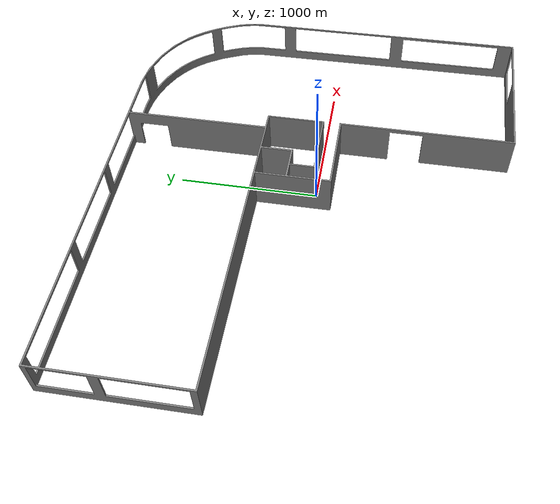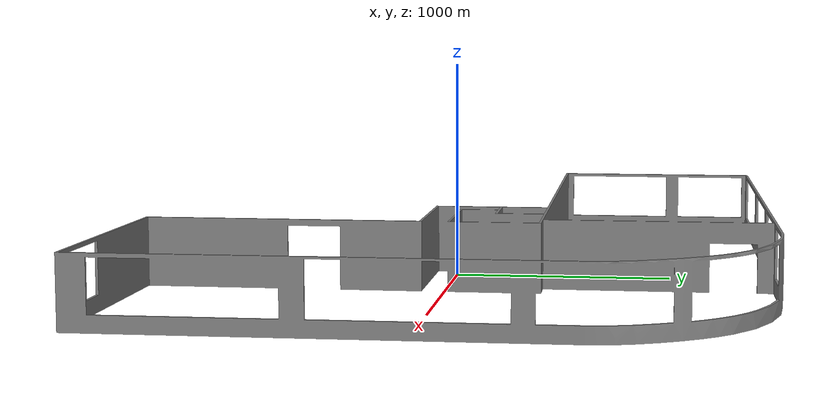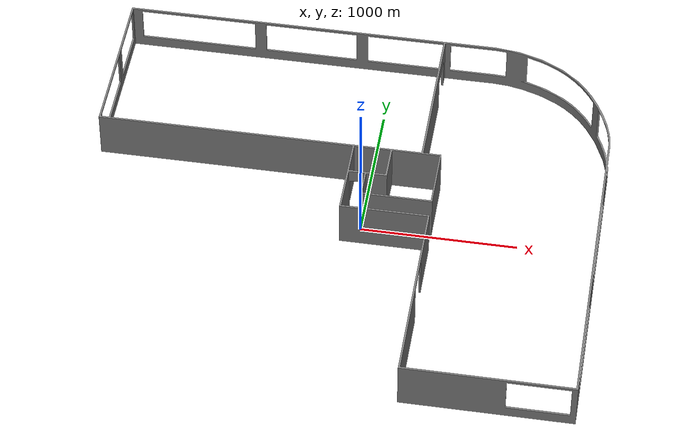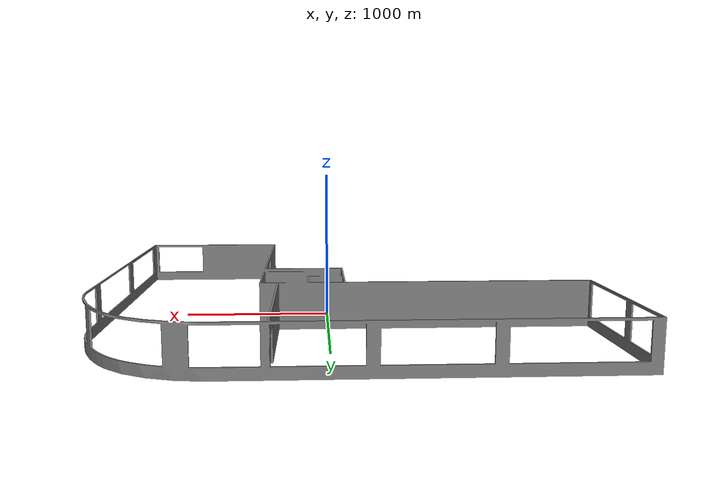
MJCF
<mujoco model="body1_structure">
  <default>
    <default class="visual">
      <geom group="2" type="mesh" contype="0" conaffinity="0"/>
    </default>
    <default class="collision">
      <geom group="3" type="mesh"/>
    </default>
  </default>
  <asset>
    <mesh file="body1_structure.obj"/>
    <mesh file="body1_structure_collision_0.obj"/>
    <mesh file="body1_structure_collision_1.obj"/>
    <mesh file="body1_structure_collision_2.obj"/>
    <mesh file="body1_structure_collision_3.obj"/>
    <mesh file="body1_structure_collision_4.obj"/>
    <mesh file="body1_structure_collision_5.obj"/>
    <mesh file="body1_structure_collision_6.obj"/>
    <mesh file="body1_structure_collision_7.obj"/>
    <mesh file="body1_structure_collision_8.obj"/>
    <mesh file="body1_structure_collision_9.obj"/>
    <mesh file="body1_structure_collision_10.obj"/>
    <mesh file="body1_structure_collision_11.obj"/>
    <mesh file="body1_structure_collision_12.obj"/>
    <mesh file="body1_structure_collision_13.obj"/>
    <mesh file="body1_structure_collision_14.obj"/>
    <mesh file="body1_structure_collision_15.obj"/>
    <mesh file="body1_structure_collision_16.obj"/>
    <mesh file="body1_structure_collision_17.obj"/>
    <mesh file="body1_structure_collision_18.obj"/>
    <mesh file="body1_structure_collision_19.obj"/>
    <mesh file="body1_structure_collision_20.obj"/>
    <mesh file="body1_structure_collision_21.obj"/>
    <mesh file="body1_structure_collision_22.obj"/>
    <mesh file="body1_structure_collision_23.obj"/>
    <mesh file="body1_structure_collision_24.obj"/>
    <mesh file="body1_structure_collision_25.obj"/>
    <mesh file="body1_structure_collision_26.obj"/>
    <mesh file="body1_structure_collision_27.obj"/>
    <mesh file="body1_structure_collision_28.obj"/>
    <mesh file="body1_structure_collision_29.obj"/>
    <mesh file="body1_structure_collision_30.obj"/>
    <mesh file="body1_structure_collision_31.obj"/>
    <mesh file="body1_structure_collision_32.obj"/>
    <mesh file="body1_structure_collision_33.obj"/>
    <mesh file="body1_structure_collision_34.obj"/>
    <mesh file="body1_structure_collision_35.obj"/>
    <mesh file="body1_structure_collision_36.obj"/>
    <mesh file="body1_structure_collision_37.obj"/>
    <mesh file="body1_structure_collision_38.obj"/>
    <mesh file="body1_structure_collision_39.obj"/>
    <mesh file="body1_structure_collision_40.obj"/>
    <mesh file="body1_structure_collision_41.obj"/>
    <mesh file="body1_structure_collision_42.obj"/>
  </asset>
  <worldbody>
    <body name="body1_structure">
      <geom mesh="body1_structure" class="visual"/>
      <geom mesh="body1_structure_collision_0" rgba="0.32724969598128373 0.1972258409056462 0.3923668851491575 1" class="collision"/>
      <geom mesh="body1_structure_collision_1" rgba="0.09693274530724261 0.20783565881962152 0.8356760571499492 1" class="collision"/>
      <geom mesh="body1_structure_collision_2" rgba="0.7426505215243986 0.6508539248048419 0.20562118372546367 1" class="collision"/>
      <geom mesh="body1_structure_collision_3" rgba="0.9897334414359933 0.5420568340129176 0.09352055796547698 1" class="collision"/>
      <geom mesh="body1_structure_collision_4" rgba="0.5742478151476501 0.08488662875016817 0.4269541825901434 1" class="collision"/>
      <geom mesh="body1_structure_collision_5" rgba="0.3241265236432944 0.6032232762784229 0.5456857987150413 1" class="collision"/>
      <geom mesh="body1_structure_collision_6" rgba="0.9627280432614701 0.573966753849216 0.47000412536865943 1" class="collision"/>
      <geom mesh="body1_structure_collision_7" rgba="0.06153528344564485 0.6632724384818096 0.05645338223921714 1" class="collision"/>
      <geom mesh="body1_structure_collision_8" rgba="0.21602852198098754 0.9224024828855131 0.985824573943899 1" class="collision"/>
      <geom mesh="body1_structure_collision_9" rgba="0.06387200042707086 0.17063881460866126 0.23655244505294293 1" class="collision"/>
      <geom mesh="body1_structure_collision_10" rgba="0.2969394483358725 0.47875434494166835 0.562075703310849 1" class="collision"/>
      <geom mesh="body1_structure_collision_11" rgba="0.8888672488353445 0.3526302885031469 0.43003232671030267 1" class="collision"/>
      <geom mesh="body1_structure_collision_12" rgba="0.976628201924993 0.6314472106351475 0.7516521996546836 1" class="collision"/>
      <geom mesh="body1_structure_collision_13" rgba="0.17433152887270853 0.7491630622549535 0.04380467747192618 1" class="collision"/>
      <geom mesh="body1_structure_collision_14" rgba="0.1781683150254325 0.7845376990715422 0.7188697575921603 1" class="collision"/>
      <geom mesh="body1_structure_collision_15" rgba="0.011749828655364891 0.3222062717126919 0.2604946239390109 1" class="collision"/>
      <geom mesh="body1_structure_collision_16" rgba="0.3155462962892174 0.06188730623335448 0.800292523870193 1" class="collision"/>
      <geom mesh="body1_structure_collision_17" rgba="0.2996703374970544 0.9018297385786379 0.490902510718611 1" class="collision"/>
      <geom mesh="body1_structure_collision_18" rgba="0.6762759271877483 0.0733022408166647 0.34624799228555314 1" class="collision"/>
      <geom mesh="body1_structure_collision_19" rgba="0.6546975963371918 0.6213622900230608 0.15785659254128803 1" class="collision"/>
      <geom mesh="body1_structure_collision_20" rgba="0.4070229099929997 0.31867429535217784 0.5916229023772039 1" class="collision"/>
      <geom mesh="body1_structure_collision_21" rgba="0.6092454690833771 0.700185802634076 0.6109189697922586 1" class="collision"/>
      <geom mesh="body1_structure_collision_22" rgba="0.9995563442795045 0.8799921286144118 0.49578635156221285 1" class="collision"/>
      <geom mesh="body1_structure_collision_23" rgba="0.46862187468677463 0.3887832328536872 0.8650451862524497 1" class="collision"/>
      <geom mesh="body1_structure_collision_24" rgba="0.9801649583140991 0.884398741648922 0.933414904470305 1" class="collision"/>
      <geom mesh="body1_structure_collision_25" rgba="0.43750903410802644 0.36100157059692417 0.528434714340258 1" class="collision"/>
      <geom mesh="body1_structure_collision_26" rgba="0.26618826720460353 0.919827803053899 0.8153948816981667 1" class="collision"/>
      <geom mesh="body1_structure_collision_27" rgba="0.012688060035216164 0.3919333347597812 0.7410406344651449 1" class="collision"/>
      <geom mesh="body1_structure_collision_28" rgba="0.22809278736879668 0.683546063317673 0.5770737223517889 1" class="collision"/>
      <geom mesh="body1_structure_collision_29" rgba="0.6263517463403108 0.31554120124636453 0.9938763793098281 1" class="collision"/>
      <geom mesh="body1_structure_collision_30" rgba="0.1879699166748534 0.6651460867795647 0.38461702179649226 1" class="collision"/>
      <geom mesh="body1_structure_collision_31" rgba="0.7925220148657474 0.5085738340345807 0.2394046447968773 1" class="collision"/>
      <geom mesh="body1_structure_collision_32" rgba="0.4352914246781582 0.5239995387980515 0.16197900834471535 1" class="collision"/>
      <geom mesh="body1_structure_collision_33" rgba="0.9244036720171327 0.05195888178498542 0.2521838740814406 1" class="collision"/>
      <geom mesh="body1_structure_collision_34" rgba="0.5164132376886934 0.24141779220859516 0.06869533350532975 1" class="collision"/>
      <geom mesh="body1_structure_collision_35" rgba="0.7874684414871959 0.2909832007071633 0.7661798465526414 1" class="collision"/>
      <geom mesh="body1_structure_collision_36" rgba="0.5568099244541751 0.45407903879616507 0.8396323904427053 1" class="collision"/>
      <geom mesh="body1_structure_collision_37" rgba="0.1946955475759018 0.9559646437903367 0.5347033316477974 1" class="collision"/>
      <geom mesh="body1_structure_collision_38" rgba="0.302535631603983 0.4284686693498404 0.5667190654193012 1" class="collision"/>
      <geom mesh="body1_structure_collision_39" rgba="0.6561361130195684 0.16527819968164337 0.5970911620294137 1" class="collision"/>
      <geom mesh="body1_structure_collision_40" rgba="0.04066042885441434 0.5544225389164331 0.2330930330310943 1" class="collision"/>
      <geom mesh="body1_structure_collision_41" rgba="0.3780441170715888 0.9067303953085052 0.37875080911507597 1" class="collision"/>
      <geom mesh="body1_structure_collision_42" rgba="0.6390143851097786 0.22125446118188674 0.9542634257252235 1" class="collision"/>
    </body>
  </worldbody>
</mujoco>
